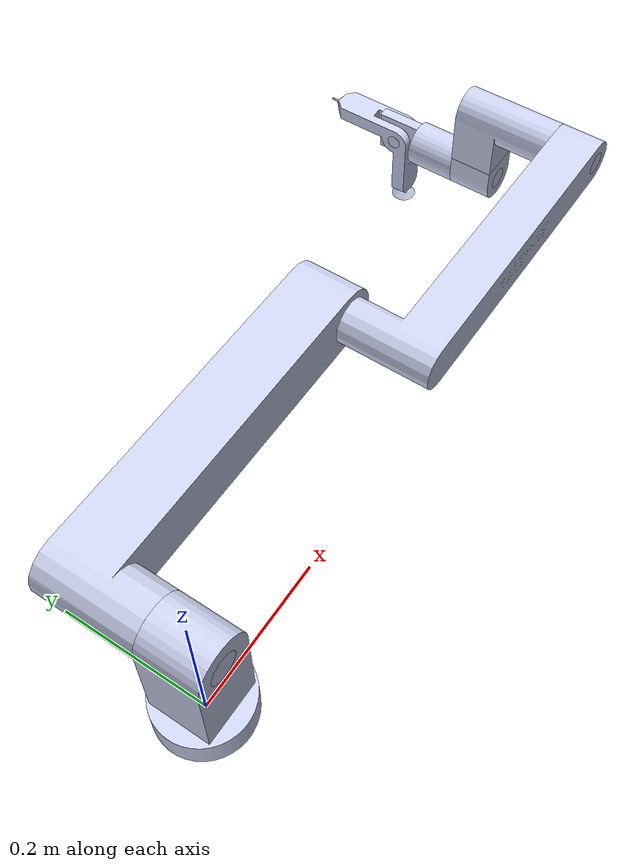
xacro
<?xml version="1.0"?>
<!-- Name your robot here -->
<robot name ="justbot" xmlns:xacro="http://wiki.ros.org/xacro">

	<!-- Include your urdf files here -->
		<!-- Include Robot's urdf filepath -->
		<!-- Include Tool's urdf filepath -->
		<xacro:include filename="$(find justbot)/urdf/justbot.urdf"/>
		<xacro:include filename="$(find justool)/urdf/justool.urdf"/>

	<gazebo>
		<plugin name="gazebo_ros_control" filename="libgazebo_ros_control.so">
			<robotNamespace>/justbot</robotNamespace>
			<robotSimType>gazebo_ros_control/DefaultRobotHWSim</robotSimType>
			<legacyModeNS>true</legacyModeNS>
		</plugin>
	</gazebo>

	<!-- Create a joint between your robot and tool -->
	<joint name="linkn_to_tool_joint" type="fixed">
		<parent link="link_n"/>
		<child link="base_tool" />
		<origin xyz="0 0 0" rpy="0 0 3.14159"/>
  	</joint>

</robot>

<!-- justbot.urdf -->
<robot
  name="justbot">
  <link name="world" />
  <joint name="fixed" type="fixed">
    <parent link="world" />
    <child link="base_link" />
  </joint>
  <link
    name="base_link">
    <inertial>
      <origin
        xyz="-1.501523162094E-18 -9.98976698985072E-19 0.0242878466872111"
        rpy="0 0 0" />
      <mass
        value="0.509723408044944" />
      <inertia
        ixx="0.000562062131048509"
        ixy="2.80703650453303E-36"
        ixz="-1.70019905570331E-20"
        iyy="0.000562062131048509"
        iyz="-1.99886657001989E-20"
        izz="0.000837077362549" />
    </inertial>
    <visual>
      <origin
        xyz="0 0 0"
        rpy="0 0 0" />
      <geometry>
        <mesh
          filename="package://justbot/meshes/base_link.dae" />
      </geometry>
      <material
        name="">
        <color
          rgba="0.792156862745098 0.819607843137255 0.933333333333333 1" />
      </material>
    </visual>
    <collision>
      <origin
        xyz="0 0 0"
        rpy="0 0 0" />
      <geometry>
        <mesh
          filename="package://justbot/meshes/base_link.dae" />
      </geometry>
    </collision>
  </link>
  <link
    name="link_1">
    <inertial>
      <origin
        xyz="1.0171556094959E-18 -1.09336923950592E-17 0.0549055408748314"
        rpy="0 0 0" />
      <mass
        value="0.830265482457438" />
      <inertia
        ixx="0.00203681888094444"
        ixy="-1.30713124502344E-21"
        ixz="3.46319733153048E-21"
        iyy="0.00205357404176359"
        iyz="-1.53095519710022E-19"
        izz="0.000945935093570191" />
    </inertial>
    <visual>
      <origin
        xyz="0 0 0"
        rpy="0 0 0" />
      <geometry>
        <mesh
          filename="package://justbot/meshes/link_1.dae" />
      </geometry>
      <material
        name="">
        <color
          rgba="0.792156862745098 0.819607843137255 0.933333333333333 1" />
      </material>
    </visual>
    <collision>
      <origin
        xyz="0 0 0"
        rpy="0 0 0" />
      <geometry>
        <mesh
          filename="package://justbot/meshes/link_1.dae" />
      </geometry>
    </collision>
  </link>
  <joint
    name="joint_1"
    type="revolute">
    <origin
      xyz="0 0 0.060625"
      rpy="0 0 0" />
    <parent
      link="base_link" />
    <child
      link="link_1" />
    <axis
      xyz="0 0 1" />
    <limit effort="150.0" lower="-6.28318530718" upper="6.28318530718" velocity="3.14"/>
  </joint>
  <link
    name="link_2">
    <inertial>
      <origin
        xyz="0.183102814406912 9.35362898246694E-15 0.124079659201039"
        rpy="0 0 0" />
      <mass
        value="3.39003888115763" />
      <inertia
        ixx="0.00613550007773526"
        ixy="-2.5317738236829E-18"
        ixz="-0.00572330212867927"
        iyy="0.0758546236119664"
        iyz="7.38649342611205E-19"
        izz="0.0731564879724906" />
    </inertial>
    <visual>
      <origin
        xyz="0 0 0"
        rpy="0 0 0" />
      <geometry>
        <mesh
          filename="package://justbot/meshes/link_2.dae" />
      </geometry>
      <material
        name="">
        <color
          rgba="0.792156862745098 0.819607843137255 0.933333333333333 1" />
      </material>
    </visual>
    <collision>
      <origin
        xyz="0 0 0"
        rpy="0 0 0" />
      <geometry>
        <mesh
          filename="package://justbot/meshes/link_2.dae" />
      </geometry>
    </collision>
  </link>
  <joint
    name="joint_2"
    type="revolute">
    <origin
      xyz="0 0 0.101875"
      rpy="-1.5707963267949 0 0" />
    <parent
      link="link_1" />
    <child
      link="link_2" />
    <axis
      xyz="0 0 1" />
    <limit effort="150.0" lower="-6.28318530718" upper="6.28318530718" velocity="3.14"/>
  </joint>
  <link
    name="link_3">
    <inertial>
      <origin
        xyz="0.161388593638685 -9.4091401336982E-15 0.119864473827281"
        rpy="0 0 0" />
      <mass
        value="1.81866200086027" />
      <inertia
        ixx="0.00322307899255989"
        ixy="2.39517592047964E-18"
        ixz="-0.00394347878837956"
        iyy="0.0351952914651063"
        iyz="1.30904401378256E-18"
        izz="0.0329915795132328" />
    </inertial>
    <visual>
      <origin
        xyz="0 0 0"
        rpy="0 0 0" />
      <geometry>
        <mesh
          filename="package://justbot/meshes/link_3.dae" />
      </geometry>
      <material
        name="">
        <color
          rgba="0.792156862745098 0.819607843137255 0.933333333333333 1" />
      </material>
    </visual>
    <collision>
      <origin
        xyz="0 0 0"
        rpy="0 0 0" />
      <geometry>
        <mesh
          filename="package://justbot/meshes/link_3.dae" />
      </geometry>
    </collision>
  </link>
  <joint
    name="joint_3"
    type="revolute">
    <origin
      xyz="0.425000000000003 0 0.1333"
      rpy="3.14159265358979 0 0" />
    <parent
      link="link_2" />
    <child
      link="link_3" />
    <axis
      xyz="0 0 -1" />
    <limit effort="150.0" lower="-3.14159265359" upper="3.14159265359" velocity="3.14"/>
  </joint>
  <link
    name="link_4">
    <inertial>
      <origin
        xyz="-3.44169137633799E-15 0.0115289114502005 0.0987967449476777"
        rpy="0 0 0" />
      <mass
        value="0.564199619415974" />
      <inertia
        ixx="0.00154204456756717"
        ixy="-1.2848144879846E-22"
        ixz="3.79774791975331E-20"
        iyy="0.0013498280848747"
        iyz="-0.000224430129948098"
        izz="0.000476587370665697" />
    </inertial>
    <visual>
      <origin
        xyz="0 0 0"
        rpy="0 0 0" />
      <geometry>
        <mesh
          filename="package://justbot/meshes/link_4.dae" />
      </geometry>
      <material
        name="">
        <color
          rgba="0.792156862745098 0.819607843137255 0.933333333333333 1" />
      </material>
    </visual>
    <collision>
      <origin
        xyz="0 0 0"
        rpy="0 0 0" />
      <geometry>
        <mesh
          filename="package://justbot/meshes/link_4.dae" />
      </geometry>
    </collision>
  </link>
  <joint
    name="joint_4"
    type="revolute">
    <origin
      xyz="0.3922 0 0.1333"
      rpy="3.14159265358979 0 0" />
    <parent
      link="link_3" />
    <child
      link="link_4" />
    <axis
      xyz="0 0 1" />
    <limit effort="28.0" lower="-6.28318530718" upper="6.28318530718" velocity="6.28"/>
  </joint>
  <link
    name="link_5">
    <inertial>
      <origin
        xyz="3.5527136788005E-15 4.16333634234434E-16 0.0909930736404903"
        rpy="0 0 0" />
      <mass
        value="0.171617251235193" />
      <inertia
        ixx="0.000126937476961934"
        ixy="2.58335477231217E-21"
        ixz="-4.233199045199E-21"
        iyy="0.000130913555164134"
        iyz="2.81320832287711E-21"
        izz="9.66086256175968E-05" />
    </inertial>
    <visual>
      <origin
        xyz="0 0 0"
        rpy="0 0 0" />
      <geometry>
        <mesh
          filename="package://justbot/meshes/link_5.dae" />
      </geometry>
      <material
        name="">
        <color
          rgba="0.792156862745098 0.819607843137255 0.933333333333333 1" />
      </material>
    </visual>
    <collision>
      <origin
        xyz="0 0 0"
        rpy="0 0 0" />
      <geometry>
        <mesh
          filename="package://justbot/meshes/link_5.dae" />
      </geometry>
    </collision>
  </link>
  <joint
    name="joint_5"
    type="revolute">
    <origin
      xyz="0 0 0.1333"
      rpy="1.5707963267949 0 3.14159265358979" />
    <parent
      link="link_4" />
    <child
      link="link_5" />
    <axis
      xyz="0 0 -1" />
    <limit effort="28.0" lower="-6.28318530718" upper="6.28318530718" velocity="6.28"/>
  </joint>
  <link
    name="link_6">
    <inertial>
      <origin
        xyz="-3.33066907387547E-15 9.32587340685131E-15 0.0533108106325026"
        rpy="0 0 0" />
      <mass
        value="0.239201755179413" />
      <inertia
        ixx="0.000285340334026843"
        ixy="9.58284049491214E-22"
        ixz="-7.36427033576577E-20"
        iyy="0.00028534057911407"
        iyz="-1.07085344422525E-20"
        izz="9.33267857592035E-05" />
    </inertial>
    <visual>
      <origin
        xyz="0 0 0"
        rpy="0 0 0" />
      <geometry>
        <mesh
          filename="package://justbot/meshes/link_6.dae" />
      </geometry>
      <material
        name="">
        <color
          rgba="0.792156862745098 0.819607843137255 0.933333333333333 1" />
      </material>
    </visual>
    <collision>
      <origin
        xyz="0 0 0"
        rpy="0 0 0" />
      <geometry>
        <mesh
          filename="package://justbot/meshes/link_6.dae" />
      </geometry>
    </collision>
  </link>
  <joint
    name="joint_6"
    type="revolute">
    <origin
      xyz="0 0 0.0997"
      rpy="1.5707963267949 0 3.14159265358979" />
    <parent
      link="link_5" />
    <child
      link="link_6" />
    <axis
      xyz="0 0 1" />
    <limit effort="28.0" lower="-6.28318530718" upper="6.28318530718" velocity="6.28"/>
  </joint>
  <link
    name="link_n">
    <inertial>
      <origin
        xyz="0.015093468285773 9.35362898246694E-15 0.0450358154327502"
        rpy="0 0 0" />
      <mass
        value="0.203591044676702" />
      <inertia
        ixx="0.000241214315615011"
        ixy="-2.44021835354509E-19"
        ixz="0.000139798297357499"
        iyy="0.00044325277313205"
        iyz="1.67778796901328E-19"
        izz="0.000250181144749441" />
    </inertial>
  </link>
  <joint
    name="joint_n"
    type="fixed">
    <origin
      xyz="0 0 0.0995999999999999"
      rpy="0 0 0" />
    <parent
      link="link_6" />
    <child
      link="link_n" />
    <axis
      xyz="0 0 0" />
  </joint>
  <transmission name="trans_joint_1">
        <type>transmission_interface/SimpleTransmission</type>
        <joint name="joint_1">
            <hardwareInterface>hardware_interface/EffortJointInterface</hardwareInterface>
        </joint>
        <actuator name="joint_1_motor">
            <hardwareInterface>hardware_interface/EffortJointInterface</hardwareInterface>
            <mechanicalReduction>1</mechanicalReduction>
        </actuator>
    </transmission>
    <transmission name="trans_joint_2">
        <type>transmission_interface/SimpleTransmission</type>
        <joint name="joint_2">
            <hardwareInterface>hardware_interface/EffortJointInterface</hardwareInterface>
        </joint>
        <actuator name="joint_2_motor">
            <hardwareInterface>hardware_interface/EffortJointInterface</hardwareInterface>
            <mechanicalReduction>1</mechanicalReduction>
        </actuator>
    </transmission>
    <transmission name="trans_joint_3">
        <type>transmission_interface/SimpleTransmission</type>
        <joint name="joint_3">
            <hardwareInterface>hardware_interface/EffortJointInterface</hardwareInterface>
        </joint>
        <actuator name="joint_3_motor">
            <hardwareInterface>hardware_interface/EffortJointInterface</hardwareInterface>
            <mechanicalReduction>1</mechanicalReduction>
        </actuator>
    </transmission>
    <transmission name="trans_joint_4">
        <type>transmission_interface/SimpleTransmission</type>
        <joint name="joint_4">
            <hardwareInterface>hardware_interface/EffortJointInterface</hardwareInterface>
        </joint>
        <actuator name="joint_4_motor">
            <hardwareInterface>hardware_interface/EffortJointInterface</hardwareInterface>
            <mechanicalReduction>1</mechanicalReduction>
        </actuator>
    </transmission>
    <transmission name="trans_joint_5">
        <type>transmission_interface/SimpleTransmission</type>
        <joint name="joint_5">
            <hardwareInterface>hardware_interface/EffortJointInterface</hardwareInterface>
        </joint>
        <actuator name="joint_5_motor">
            <hardwareInterface>hardware_interface/EffortJointInterface</hardwareInterface>
            <mechanicalReduction>1</mechanicalReduction>
        </actuator>
    </transmission>
    <transmission name="trans_joint_6">
        <type>transmission_interface/SimpleTransmission</type>
        <joint name="joint_6">
            <hardwareInterface>hardware_interface/EffortJointInterface</hardwareInterface>
        </joint>
        <actuator name="joint_6_motor">
            <hardwareInterface>hardware_interface/EffortJointInterface</hardwareInterface>
            <mechanicalReduction>1</mechanicalReduction>
        </actuator>
    </transmission>
</robot>

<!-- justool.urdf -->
<robot
  name="justool">
  <link
    name="base_tool">
    <inertial>
      <origin
        xyz="3.23928900433173E-19 -0.000280672781129251 0.0299986870177669"
        rpy="0 0 0" />
      <mass
        value="0.061286086776219" />
      <inertia
        ixx="3.21208626920349E-05"
        ixy="1.00820073326552E-21"
        ixz="4.21091576797561E-22"
        iyy="1.88064093158723E-05"
        iyz="3.09755144245559E-09"
        izz="1.84753678032904E-05" />
    </inertial>
    <visual>
      <origin
        xyz="0 0 0"
        rpy="0 0 0" />
      <geometry>
        <mesh
          filename="package://justool/meshes/base_link.dae" />
      </geometry>
      <material
        name="">
        <color
          rgba="0.792156862745098 0.819607843137255 0.933333333333333 1" />
      </material>
    </visual>
    <collision>
      <origin
        xyz="0 0 0"
        rpy="0 0 0" />
      <geometry>
        <mesh
          filename="package://justool/meshes/base_link.dae" />
      </geometry>
    </collision>
  </link>
  <link
    name="tool_link">
    <inertial>
      <origin
        xyz="0.0215098182497306 -0.0215937309664561 3.07442347451494E-18"
        rpy="0 0 0" />
      <mass
        value="0.142304957900483" />
      <inertia
        ixx="0.000231705805927366"
        ixy="-0.0001397982973575"
        ixz="1.20280331758759E-20"
        iyy="0.000222407877317925"
        iyz="-8.51817071062925E-21"
        izz="0.000411131910440016" />
    </inertial>
    <visual>
      <origin
        xyz="0 0 0"
        rpy="0 0 0" />
      <geometry>
        <mesh
          filename="package://justool/meshes/tool_link.dae" />
      </geometry>
      <material
        name="">
        <color
          rgba="0.792156862745098 0.819607843137255 0.933333333333333 1" />
      </material>
    </visual>
    <collision>
      <origin
        xyz="0 0 0"
        rpy="0 0 0" />
      <geometry>
        <mesh
          filename="package://justool/meshes/tool_link.dae" />
      </geometry>
    </collision>
  </link>
  <joint
    name="tool_joint"
    type="revolute">
    <origin
      xyz="0 -0.00028067 0.029999"
      rpy="1.5708 -1.5614 -1.5708" />
    <parent
      link="base_tool" />
    <child
      link="tool_link" />
    <axis
      xyz="0 0 1" />
    <limit effort="28.0" lower="-6.28318530718" upper="6.28318530718" velocity="6.28"/>
  </joint>
  <transmission name="trans_tool_joint">
        <type>transmission_interface/SimpleTransmission</type>
        <joint name="tool_joint">
            <hardwareInterface>hardware_interface/EffortJointInterface</hardwareInterface>
        </joint>
        <actuator name="tool_joint_motor">
            <hardwareInterface>hardware_interface/EffortJointInterface</hardwareInterface>
            <mechanicalReduction>1</mechanicalReduction>
        </actuator>
    </transmission>
</robot>
